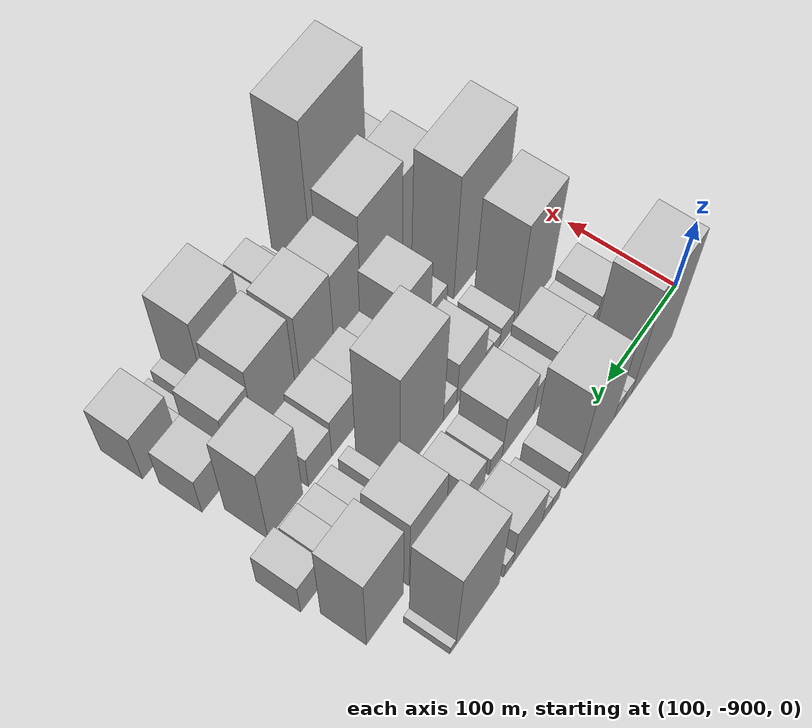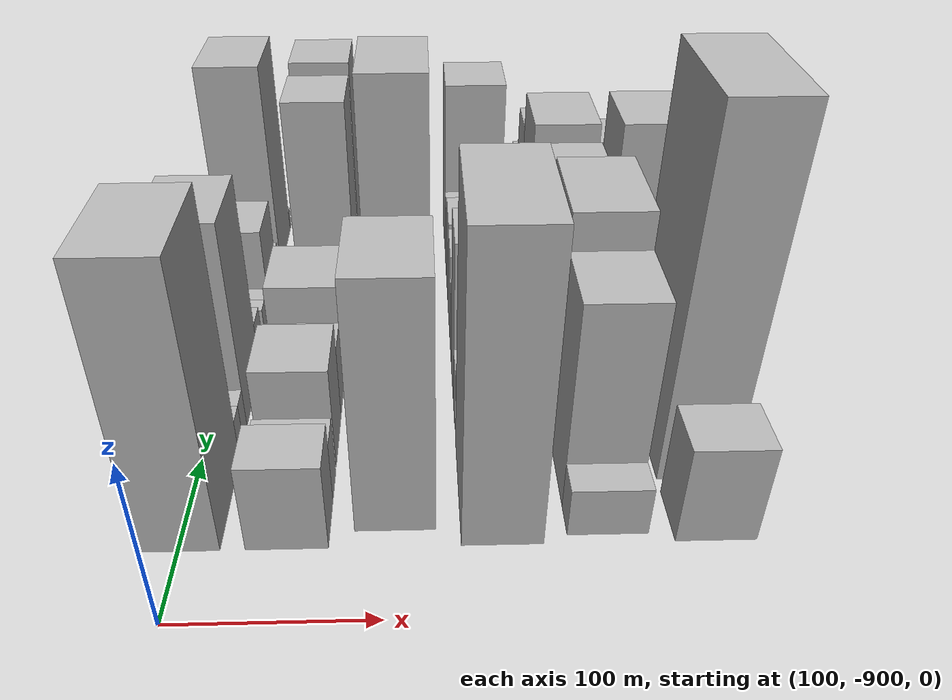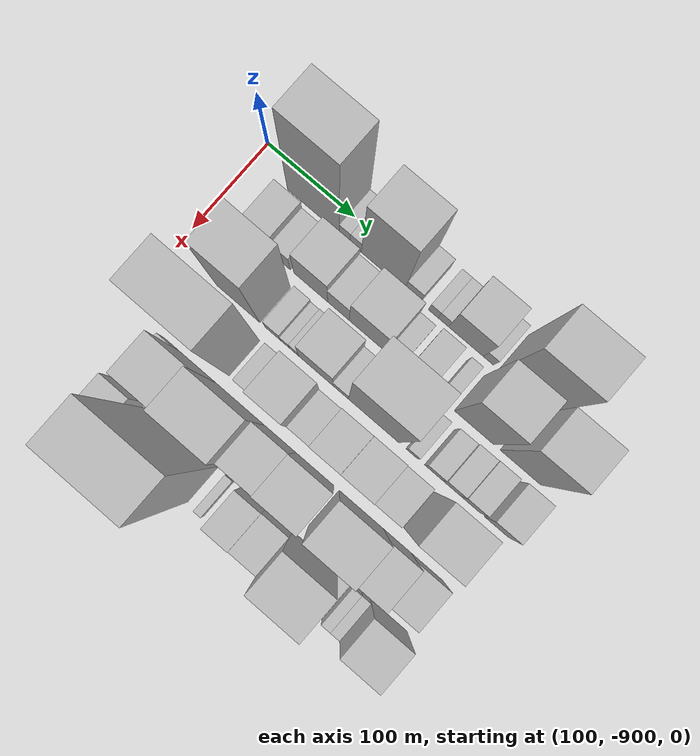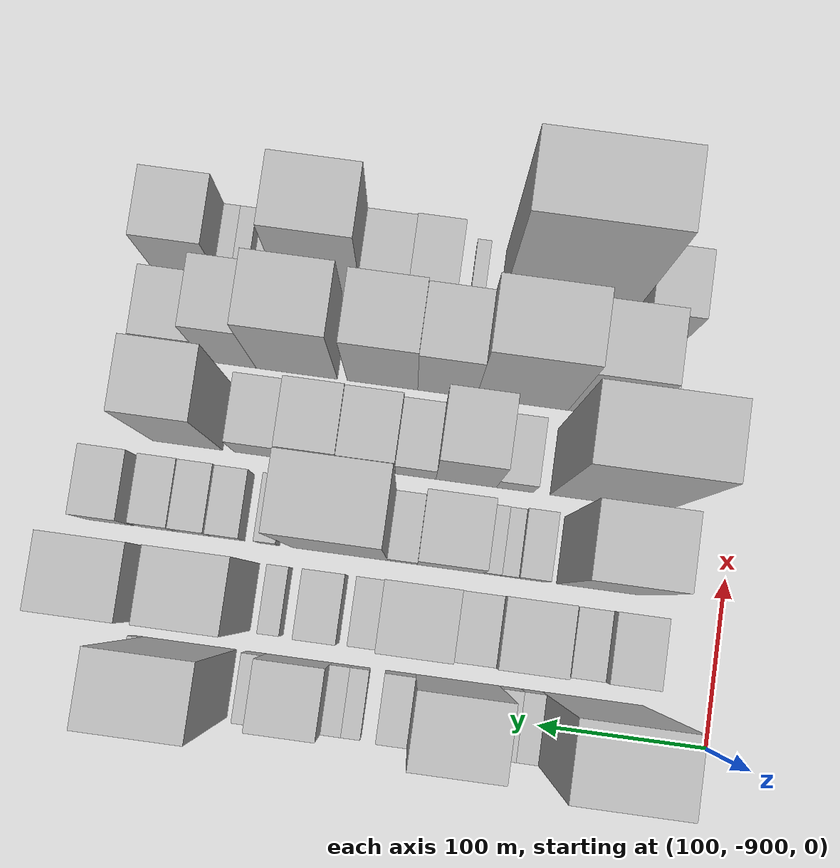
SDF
<sdf version="1.6">
 <world name="default">
  <model name="building_1">
   <static>1</static>
   <pose>100.0000 -830.2596 0 0.000000 0.000000 0.000000</pose>
   <link name="link">
    <pose>0 0 84.00 0 0 0</pose>
    <collision name="collision"><geometry><box><size>40.0000 59.4807 168.0000</size></box></geometry></collision>
    <visual name="visual">
     <cast_shadows>0</cast_shadows>
     <geometry><box><size>40.0000 59.4807 168.0000</size></box></geometry>
     <material>
      <script>
       <uri>model://HANNAS_wall/materials/scripts</uri>
       <uri>model://HANNAS_wall/materials/textures</uri>
       <name>vrc/HANNAS_wall</name>
      </script>
     </material>
    </visual>
   </link>
  </model>
  <model name="building_2">
   <static>1</static>
   <pose>100.0000 -794.2033 0 0.000000 0.000000 0.000000</pose>
   <link name="link">
    <pose>0 0 13.50 0 0 0</pose>
    <collision name="collision"><geometry><box><size>40.0000 12.6319 27.0000</size></box></geometry></collision>
    <visual name="visual">
     <cast_shadows>0</cast_shadows>
     <geometry><box><size>40.0000 12.6319 27.0000</size></box></geometry>
     <material>
      <script>
       <uri>model://HANNAS_wall/materials/scripts</uri>
       <uri>model://HANNAS_wall/materials/textures</uri>
       <name>vrc/HANNAS_wall</name>
      </script>
     </material>
    </visual>
   </link>
  </model>
  <model name="building_3">
   <static>1</static>
   <pose>100.0000 -781.5189 0 0.000000 0.000000 0.000000</pose>
   <link name="link">
    <pose>0 0 13.50 0 0 0</pose>
    <collision name="collision"><geometry><box><size>40.0000 12.7370 27.0000</size></box></geometry></collision>
    <visual name="visual">
     <cast_shadows>0</cast_shadows>
     <geometry><box><size>40.0000 12.7370 27.0000</size></box></geometry>
     <material>
      <script>
       <uri>model://HANNAS_wall/materials/scripts</uri>
       <uri>model://HANNAS_wall/materials/textures</uri>
       <name>vrc/HANNAS_wall</name>
      </script>
     </material>
    </visual>
   </link>
  </model>
  <model name="building_4">
   <static>1</static>
   <pose>100.0000 -750.2346 0 0.000000 0.000000 0.000000</pose>
   <link name="link">
    <pose>0 0 66.00 0 0 0</pose>
    <collision name="collision"><geometry><box><size>40.0000 49.8316 132.0000</size></box></geometry></collision>
    <visual name="visual">
     <cast_shadows>0</cast_shadows>
     <geometry><box><size>40.0000 49.8316 132.0000</size></box></geometry>
     <material>
      <script>
       <uri>model://HANNAS_wall/materials/scripts</uri>
       <uri>model://HANNAS_wall/materials/textures</uri>
       <name>vrc/HANNAS_wall</name>
      </script>
     </material>
    </visual>
   </link>
  </model>
  <model name="building_5">
   <static>1</static>
   <pose>100.0000 -716.4139 0 0.000000 0.000000 0.000000</pose>
   <link name="link">
    <pose>0 0 16.50 0 0 0</pose>
    <collision name="collision"><geometry><box><size>40.0000 17.8099 33.0000</size></box></geometry></collision>
    <visual name="visual">
     <cast_shadows>0</cast_shadows>
     <geometry><box><size>40.0000 17.8099 33.0000</size></box></geometry>
     <material>
      <script>
       <uri>model://HANNAS_wall/materials/scripts</uri>
       <uri>model://HANNAS_wall/materials/textures</uri>
       <name>vrc/HANNAS_wall</name>
      </script>
     </material>
    </visual>
   </link>
  </model>
  <model name="building_6">
   <static>1</static>
   <pose>100.0000 -692.8799 0 0.000000 0.000000 0.000000</pose>
   <link name="link">
    <pose>0 0 12.00 0 0 0</pose>
    <collision name="collision"><geometry><box><size>40.0000 11.2581 24.0000</size></box></geometry></collision>
    <visual name="visual">
     <cast_shadows>0</cast_shadows>
     <geometry><box><size>40.0000 11.2581 24.0000</size></box></geometry>
     <material>
      <script>
       <uri>model://HANNAS_wall/materials/scripts</uri>
       <uri>model://HANNAS_wall/materials/textures</uri>
       <name>vrc/HANNAS_wall</name>
      </script>
     </material>
    </visual>
   </link>
  </model>
  <model name="building_7">
   <static>1</static>
   <pose>100.0000 -681.3633 0 0.000000 0.000000 0.000000</pose>
   <link name="link">
    <pose>0 0 12.00 0 0 0</pose>
    <collision name="collision"><geometry><box><size>40.0000 11.7751 24.0000</size></box></geometry></collision>
    <visual name="visual">
     <cast_shadows>0</cast_shadows>
     <geometry><box><size>40.0000 11.7751 24.0000</size></box></geometry>
     <material>
      <script>
       <uri>model://HANNAS_wall/materials/scripts</uri>
       <uri>model://HANNAS_wall/materials/textures</uri>
       <name>vrc/HANNAS_wall</name>
      </script>
     </material>
    </visual>
   </link>
  </model>
  <model name="building_8">
   <static>1</static>
   <pose>100.0000 -655.8112 0 0.000000 0.000000 0.000000</pose>
   <link name="link">
    <pose>0 0 33.00 0 0 0</pose>
    <collision name="collision"><geometry><box><size>40.0000 39.3291 66.0000</size></box></geometry></collision>
    <visual name="visual">
     <cast_shadows>0</cast_shadows>
     <geometry><box><size>40.0000 39.3291 66.0000</size></box></geometry>
     <material>
      <script>
       <uri>model://HANNAS_wall/materials/scripts</uri>
       <uri>model://HANNAS_wall/materials/textures</uri>
       <name>vrc/HANNAS_wall</name>
      </script>
     </material>
    </visual>
   </link>
  </model>
  <model name="building_9">
   <static>1</static>
   <pose>100.0000 -630.3494 0 0.000000 0.000000 0.000000</pose>
   <link name="link">
    <pose>0 0 13.50 0 0 0</pose>
    <collision name="collision"><geometry><box><size>40.0000 11.5944 27.0000</size></box></geometry></collision>
    <visual name="visual">
     <cast_shadows>0</cast_shadows>
     <geometry><box><size>40.0000 11.5944 27.0000</size></box></geometry>
     <material>
      <script>
       <uri>model://HANNAS_wall/materials/scripts</uri>
       <uri>model://HANNAS_wall/materials/textures</uri>
       <name>vrc/HANNAS_wall</name>
      </script>
     </material>
    </visual>
   </link>
  </model>
  <model name="building_10">
   <static>1</static>
   <pose>100.0000 -590.8755 0 0.000000 0.000000 0.000000</pose>
   <link name="link">
    <pose>0 0 75.00 0 0 0</pose>
    <collision name="collision"><geometry><box><size>40.0000 55.3533 150.0000</size></box></geometry></collision>
    <visual name="visual">
     <cast_shadows>0</cast_shadows>
     <geometry><box><size>40.0000 55.3533 150.0000</size></box></geometry>
     <material>
      <script>
       <uri>model://HANNAS_wall/materials/scripts</uri>
       <uri>model://HANNAS_wall/materials/textures</uri>
       <name>vrc/HANNAS_wall</name>
      </script>
     </material>
    </visual>
   </link>
  </model>
  <model name="building_11">
   <static>1</static>
   <pose>100.0000 -559.6447 0 0.000000 0.000000 0.000000</pose>
   <link name="link">
    <pose>0 0 7.50 0 0 0</pose>
    <collision name="collision"><geometry><box><size>40.0000 7.1084 15.0000</size></box></geometry></collision>
    <visual name="visual">
     <cast_shadows>0</cast_shadows>
     <geometry><box><size>40.0000 7.1084 15.0000</size></box></geometry>
     <material>
      <script>
       <uri>model://HANNAS_wall/materials/scripts</uri>
       <uri>model://HANNAS_wall/materials/textures</uri>
       <name>vrc/HANNAS_wall</name>
      </script>
     </material>
    </visual>
   </link>
  </model>
  <model name="building_49">
   <static>1</static>
   <pose>152.0000 -845.4992 0 0.000000 0.000000 0.000000</pose>
   <link name="link">
    <pose>0 0 27.00 0 0 0</pose>
    <collision name="collision"><geometry><box><size>40.0000 29.0016 54.0000</size></box></geometry></collision>
    <visual name="visual">
     <cast_shadows>0</cast_shadows>
     <geometry><box><size>40.0000 29.0016 54.0000</size></box></geometry>
     <material>
      <script>
       <uri>model://HANNAS_wall/materials/scripts</uri>
       <uri>model://HANNAS_wall/materials/textures</uri>
       <name>vrc/HANNAS_wall</name>
      </script>
     </material>
    </visual>
   </link>
  </model>
  <model name="building_50">
   <static>1</static>
   <pose>152.0000 -821.1471 0 0.000000 0.000000 0.000000</pose>
   <link name="link">
    <pose>0 0 19.50 0 0 0</pose>
    <collision name="collision"><geometry><box><size>40.0000 19.7026 39.0000</size></box></geometry></collision>
    <visual name="visual">
     <cast_shadows>0</cast_shadows>
     <geometry><box><size>40.0000 19.7026 39.0000</size></box></geometry>
     <material>
      <script>
       <uri>model://HANNAS_wall/materials/scripts</uri>
       <uri>model://HANNAS_wall/materials/textures</uri>
       <name>vrc/HANNAS_wall</name>
      </script>
     </material>
    </visual>
   </link>
  </model>
  <model name="building_51">
   <static>1</static>
   <pose>152.0000 -787.8642 0 0.000000 0.000000 0.000000</pose>
   <link name="link">
    <pose>0 0 33.00 0 0 0</pose>
    <collision name="collision"><geometry><box><size>40.0000 38.8632 66.0000</size></box></geometry></collision>
    <visual name="visual">
     <cast_shadows>0</cast_shadows>
     <geometry><box><size>40.0000 38.8632 66.0000</size></box></geometry>
     <material>
      <script>
       <uri>model://HANNAS_wall/materials/scripts</uri>
       <uri>model://HANNAS_wall/materials/textures</uri>
       <name>vrc/HANNAS_wall</name>
      </script>
     </material>
    </visual>
   </link>
  </model>
  <model name="building_52">
   <static>1</static>
   <pose>152.0000 -756.1649 0 0.000000 0.000000 0.000000</pose>
   <link name="link">
    <pose>0 0 24.00 0 0 0</pose>
    <collision name="collision"><geometry><box><size>40.0000 24.5354 48.0000</size></box></geometry></collision>
    <visual name="visual">
     <cast_shadows>0</cast_shadows>
     <geometry><box><size>40.0000 24.5354 48.0000</size></box></geometry>
     <material>
      <script>
       <uri>model://HANNAS_wall/materials/scripts</uri>
       <uri>model://HANNAS_wall/materials/textures</uri>
       <name>vrc/HANNAS_wall</name>
      </script>
     </material>
    </visual>
   </link>
  </model>
  <model name="building_53">
   <static>1</static>
   <pose>152.0000 -722.4164 0 0.000000 0.000000 0.000000</pose>
   <link name="link">
    <pose>0 0 36.00 0 0 0</pose>
    <collision name="collision"><geometry><box><size>40.0000 42.9616 72.0000</size></box></geometry></collision>
    <visual name="visual">
     <cast_shadows>0</cast_shadows>
     <geometry><box><size>40.0000 42.9616 72.0000</size></box></geometry>
     <material>
      <script>
       <uri>model://HANNAS_wall/materials/scripts</uri>
       <uri>model://HANNAS_wall/materials/textures</uri>
       <name>vrc/HANNAS_wall</name>
      </script>
     </material>
    </visual>
   </link>
  </model>
  <model name="building_54">
   <static>1</static>
   <pose>152.0000 -692.4128 0 0.000000 0.000000 0.000000</pose>
   <link name="link">
    <pose>0 0 15.00 0 0 0</pose>
    <collision name="collision"><geometry><box><size>40.0000 17.0454 30.0000</size></box></geometry></collision>
    <visual name="visual">
     <cast_shadows>0</cast_shadows>
     <geometry><box><size>40.0000 17.0454 30.0000</size></box></geometry>
     <material>
      <script>
       <uri>model://HANNAS_wall/materials/scripts</uri>
       <uri>model://HANNAS_wall/materials/textures</uri>
       <name>vrc/HANNAS_wall</name>
      </script>
     </material>
    </visual>
   </link>
  </model>
  <model name="building_55">
   <static>1</static>
   <pose>152.0000 -665.6654 0 0.000000 0.000000 0.000000</pose>
   <link name="link">
    <pose>0 0 21.00 0 0 0</pose>
    <collision name="collision"><geometry><box><size>40.0000 24.4496 42.0000</size></box></geometry></collision>
    <visual name="visual">
     <cast_shadows>0</cast_shadows>
     <geometry><box><size>40.0000 24.4496 42.0000</size></box></geometry>
     <material>
      <script>
       <uri>model://HANNAS_wall/materials/scripts</uri>
       <uri>model://HANNAS_wall/materials/textures</uri>
       <name>vrc/HANNAS_wall</name>
      </script>
     </material>
    </visual>
   </link>
  </model>
  <model name="building_56">
   <static>1</static>
   <pose>152.0000 -638.0579 0 0.000000 0.000000 0.000000</pose>
   <link name="link">
    <pose>0 0 13.50 0 0 0</pose>
    <collision name="collision"><geometry><box><size>40.0000 12.7653 27.0000</size></box></geometry></collision>
    <visual name="visual">
     <cast_shadows>0</cast_shadows>
     <geometry><box><size>40.0000 12.7653 27.0000</size></box></geometry>
     <material>
      <script>
       <uri>model://HANNAS_wall/materials/scripts</uri>
       <uri>model://HANNAS_wall/materials/textures</uri>
       <name>vrc/HANNAS_wall</name>
      </script>
     </material>
    </visual>
   </link>
  </model>
  <model name="building_57">
   <static>1</static>
   <pose>152.0000 -602.4495 0 0.000000 0.000000 0.000000</pose>
   <link name="link">
    <pose>0 0 64.50 0 0 0</pose>
    <collision name="collision"><geometry><box><size>40.0000 44.4514 129.0000</size></box></geometry></collision>
    <visual name="visual">
     <cast_shadows>0</cast_shadows>
     <geometry><box><size>40.0000 44.4514 129.0000</size></box></geometry>
     <material>
      <script>
       <uri>model://HANNAS_wall/materials/scripts</uri>
       <uri>model://HANNAS_wall/materials/textures</uri>
       <name>vrc/HANNAS_wall</name>
      </script>
     </material>
    </visual>
   </link>
  </model>
  <model name="building_58">
   <static>1</static>
   <pose>152.0000 -550.4213 0 0.000000 0.000000 0.000000</pose>
   <link name="link">
    <pose>0 0 67.50 0 0 0</pose>
    <collision name="collision"><geometry><box><size>40.0000 45.6050 135.0000</size></box></geometry></collision>
    <visual name="visual">
     <cast_shadows>0</cast_shadows>
     <geometry><box><size>40.0000 45.6050 135.0000</size></box></geometry>
     <material>
      <script>
       <uri>model://HANNAS_wall/materials/scripts</uri>
       <uri>model://HANNAS_wall/materials/textures</uri>
       <name>vrc/HANNAS_wall</name>
      </script>
     </material>
    </visual>
   </link>
  </model>
  <model name="building_98">
   <static>1</static>
   <pose>204.0000 -825.3828 0 0.000000 0.000000 0.000000</pose>
   <link name="link">
    <pose>0 0 75.00 0 0 0</pose>
    <collision name="collision"><geometry><box><size>40.0000 49.2344 150.0000</size></box></geometry></collision>
    <visual name="visual">
     <cast_shadows>0</cast_shadows>
     <geometry><box><size>40.0000 49.2344 150.0000</size></box></geometry>
     <material>
      <script>
       <uri>model://HANNAS_wall/materials/scripts</uri>
       <uri>model://HANNAS_wall/materials/textures</uri>
       <name>vrc/HANNAS_wall</name>
      </script>
     </material>
    </visual>
   </link>
  </model>
  <model name="building_99">
   <static>1</static>
   <pose>204.0000 -785.7720 0 0.000000 0.000000 0.000000</pose>
   <link name="link">
    <pose>0 0 15.00 0 0 0</pose>
    <collision name="collision"><geometry><box><size>40.0000 17.9871 30.0000</size></box></geometry></collision>
    <visual name="visual">
     <cast_shadows>0</cast_shadows>
     <geometry><box><size>40.0000 17.9871 30.0000</size></box></geometry>
     <material>
      <script>
       <uri>model://HANNAS_wall/materials/scripts</uri>
       <uri>model://HANNAS_wall/materials/textures</uri>
       <name>vrc/HANNAS_wall</name>
      </script>
     </material>
    </visual>
   </link>
  </model>
  <model name="building_100">
   <static>1</static>
   <pose>204.0000 -771.7465 0 0.000000 0.000000 0.000000</pose>
   <link name="link">
    <pose>0 0 10.50 0 0 0</pose>
    <collision name="collision"><geometry><box><size>40.0000 10.0638 21.0000</size></box></geometry></collision>
    <visual name="visual">
     <cast_shadows>0</cast_shadows>
     <geometry><box><size>40.0000 10.0638 21.0000</size></box></geometry>
     <material>
      <script>
       <uri>model://HANNAS_wall/materials/scripts</uri>
       <uri>model://HANNAS_wall/materials/textures</uri>
       <name>vrc/HANNAS_wall</name>
      </script>
     </material>
    </visual>
   </link>
  </model>
  <model name="building_101">
   <static>1</static>
   <pose>204.0000 -761.3765 0 0.000000 0.000000 0.000000</pose>
   <link name="link">
    <pose>0 0 12.00 0 0 0</pose>
    <collision name="collision"><geometry><box><size>40.0000 10.6762 24.0000</size></box></geometry></collision>
    <visual name="visual">
     <cast_shadows>0</cast_shadows>
     <geometry><box><size>40.0000 10.6762 24.0000</size></box></geometry>
     <material>
      <script>
       <uri>model://HANNAS_wall/materials/scripts</uri>
       <uri>model://HANNAS_wall/materials/textures</uri>
       <name>vrc/HANNAS_wall</name>
      </script>
     </material>
    </visual>
   </link>
  </model>
  <model name="building_102">
   <static>1</static>
   <pose>204.0000 -736.7942 0 0.000000 0.000000 0.000000</pose>
   <link name="link">
    <pose>0 0 34.50 0 0 0</pose>
    <collision name="collision"><geometry><box><size>40.0000 38.4886 69.0000</size></box></geometry></collision>
    <visual name="visual">
     <cast_shadows>0</cast_shadows>
     <geometry><box><size>40.0000 38.4886 69.0000</size></box></geometry>
     <material>
      <script>
       <uri>model://HANNAS_wall/materials/scripts</uri>
       <uri>model://HANNAS_wall/materials/textures</uri>
       <name>vrc/HANNAS_wall</name>
      </script>
     </material>
    </visual>
   </link>
  </model>
  <model name="building_103">
   <static>1</static>
   <pose>204.0000 -708.7043 0 0.000000 0.000000 0.000000</pose>
   <link name="link">
    <pose>0 0 15.00 0 0 0</pose>
    <collision name="collision"><geometry><box><size>40.0000 17.6912 30.0000</size></box></geometry></collision>
    <visual name="visual">
     <cast_shadows>0</cast_shadows>
     <geometry><box><size>40.0000 17.6912 30.0000</size></box></geometry>
     <material>
      <script>
       <uri>model://HANNAS_wall/materials/scripts</uri>
       <uri>model://HANNAS_wall/materials/textures</uri>
       <name>vrc/HANNAS_wall</name>
      </script>
     </material>
    </visual>
   </link>
  </model>
  <model name="building_104">
   <static>1</static>
   <pose>204.0000 -671.3596 0 0.000000 0.000000 0.000000</pose>
   <link name="link">
    <pose>0 0 88.50 0 0 0</pose>
    <collision name="collision"><geometry><box><size>40.0000 56.9981 177.0000</size></box></geometry></collision>
    <visual name="visual">
     <cast_shadows>0</cast_shadows>
     <geometry><box><size>40.0000 56.9981 177.0000</size></box></geometry>
     <material>
      <script>
       <uri>model://HANNAS_wall/materials/scripts</uri>
       <uri>model://HANNAS_wall/materials/textures</uri>
       <name>vrc/HANNAS_wall</name>
      </script>
     </material>
    </visual>
   </link>
  </model>
  <model name="building_105">
   <static>1</static>
   <pose>204.0000 -628.3633 0 0.000000 0.000000 0.000000</pose>
   <link name="link">
    <pose>0 0 13.50 0 0 0</pose>
    <collision name="collision"><geometry><box><size>40.0000 12.9946 27.0000</size></box></geometry></collision>
    <visual name="visual">
     <cast_shadows>0</cast_shadows>
     <geometry><box><size>40.0000 12.9946 27.0000</size></box></geometry>
     <material>
      <script>
       <uri>model://HANNAS_wall/materials/scripts</uri>
       <uri>model://HANNAS_wall/materials/textures</uri>
       <name>vrc/HANNAS_wall</name>
      </script>
     </material>
    </visual>
   </link>
  </model>
  <model name="building_106">
   <static>1</static>
   <pose>204.0000 -604.0566 0 0.000000 0.000000 0.000000</pose>
   <link name="link">
    <pose>0 0 16.50 0 0 0</pose>
    <collision name="collision"><geometry><box><size>40.0000 19.6187 33.0000</size></box></geometry></collision>
    <visual name="visual">
     <cast_shadows>0</cast_shadows>
     <geometry><box><size>40.0000 19.6187 33.0000</size></box></geometry>
     <material>
      <script>
       <uri>model://HANNAS_wall/materials/scripts</uri>
       <uri>model://HANNAS_wall/materials/textures</uri>
       <name>vrc/HANNAS_wall</name>
      </script>
     </material>
    </visual>
   </link>
  </model>
  <model name="building_107">
   <static>1</static>
   <pose>204.0000 -584.0220 0 0.000000 0.000000 0.000000</pose>
   <link name="link">
    <pose>0 0 19.50 0 0 0</pose>
    <collision name="collision"><geometry><box><size>40.0000 20.4504 39.0000</size></box></geometry></collision>
    <visual name="visual">
     <cast_shadows>0</cast_shadows>
     <geometry><box><size>40.0000 20.4504 39.0000</size></box></geometry>
     <material>
      <script>
       <uri>model://HANNAS_wall/materials/scripts</uri>
       <uri>model://HANNAS_wall/materials/textures</uri>
       <name>vrc/HANNAS_wall</name>
      </script>
     </material>
    </visual>
   </link>
  </model>
  <model name="building_108">
   <static>1</static>
   <pose>204.0000 -562.5828 0 0.000000 0.000000 0.000000</pose>
   <link name="link">
    <pose>0 0 21.00 0 0 0</pose>
    <collision name="collision"><geometry><box><size>40.0000 22.4280 42.0000</size></box></geometry></collision>
    <visual name="visual">
     <cast_shadows>0</cast_shadows>
     <geometry><box><size>40.0000 22.4280 42.0000</size></box></geometry>
     <material>
      <script>
       <uri>model://HANNAS_wall/materials/scripts</uri>
       <uri>model://HANNAS_wall/materials/textures</uri>
       <name>vrc/HANNAS_wall</name>
      </script>
     </material>
    </visual>
   </link>
  </model>
  <model name="building_109">
   <static>1</static>
   <pose>204.0000 -533.7376 0 0.000000 0.000000 0.000000</pose>
   <link name="link">
    <pose>0 0 27.00 0 0 0</pose>
    <collision name="collision"><geometry><box><size>40.0000 27.2625 54.0000</size></box></geometry></collision>
    <visual name="visual">
     <cast_shadows>0</cast_shadows>
     <geometry><box><size>40.0000 27.2625 54.0000</size></box></geometry>
     <material>
      <script>
       <uri>model://HANNAS_wall/materials/scripts</uri>
       <uri>model://HANNAS_wall/materials/textures</uri>
       <name>vrc/HANNAS_wall</name>
      </script>
     </material>
    </visual>
   </link>
  </model>
  <model name="building_151">
   <static>1</static>
   <pose>256.0000 -825.1765 0 0.000000 0.000000 0.000000</pose>
   <link name="link">
    <pose>0 0 90.00 0 0 0</pose>
    <collision name="collision"><geometry><box><size>40.0000 69.6471 180.0000</size></box></geometry></collision>
    <visual name="visual">
     <cast_shadows>0</cast_shadows>
     <geometry><box><size>40.0000 69.6471 180.0000</size></box></geometry>
     <material>
      <script>
       <uri>model://HANNAS_wall/materials/scripts</uri>
       <uri>model://HANNAS_wall/materials/textures</uri>
       <name>vrc/HANNAS_wall</name>
      </script>
     </material>
    </visual>
   </link>
  </model>
  <model name="building_152">
   <static>1</static>
   <pose>256.0000 -769.2010 0 0.000000 0.000000 0.000000</pose>
   <link name="link">
    <pose>0 0 19.50 0 0 0</pose>
    <collision name="collision"><geometry><box><size>40.0000 22.3039 39.0000</size></box></geometry></collision>
    <visual name="visual">
     <cast_shadows>0</cast_shadows>
     <geometry><box><size>40.0000 22.3039 39.0000</size></box></geometry>
     <material>
      <script>
       <uri>model://HANNAS_wall/materials/scripts</uri>
       <uri>model://HANNAS_wall/materials/textures</uri>
       <name>vrc/HANNAS_wall</name>
      </script>
     </material>
    </visual>
   </link>
  </model>
  <model name="building_153">
   <static>1</static>
   <pose>256.0000 -739.8321 0 0.000000 0.000000 0.000000</pose>
   <link name="link">
    <pose>0 0 54.00 0 0 0</pose>
    <collision name="collision"><geometry><box><size>40.0000 36.4339 108.0000</size></box></geometry></collision>
    <visual name="visual">
     <cast_shadows>0</cast_shadows>
     <geometry><box><size>40.0000 36.4339 108.0000</size></box></geometry>
     <material>
      <script>
       <uri>model://HANNAS_wall/materials/scripts</uri>
       <uri>model://HANNAS_wall/materials/textures</uri>
       <name>vrc/HANNAS_wall</name>
      </script>
     </material>
    </visual>
   </link>
  </model>
  <model name="building_154">
   <static>1</static>
   <pose>256.0000 -709.5006 0 0.000000 0.000000 0.000000</pose>
   <link name="link">
    <pose>0 0 22.50 0 0 0</pose>
    <collision name="collision"><geometry><box><size>40.0000 24.2291 45.0000</size></box></geometry></collision>
    <visual name="visual">
     <cast_shadows>0</cast_shadows>
     <geometry><box><size>40.0000 24.2291 45.0000</size></box></geometry>
     <material>
      <script>
       <uri>model://HANNAS_wall/materials/scripts</uri>
       <uri>model://HANNAS_wall/materials/textures</uri>
       <name>vrc/HANNAS_wall</name>
      </script>
     </material>
    </visual>
   </link>
  </model>
  <model name="building_155">
   <static>1</static>
   <pose>256.0000 -680.6691 0 0.000000 0.000000 0.000000</pose>
   <link name="link">
    <pose>0 0 30.00 0 0 0</pose>
    <collision name="collision"><geometry><box><size>40.0000 33.4339 60.0000</size></box></geometry></collision>
    <visual name="visual">
     <cast_shadows>0</cast_shadows>
     <geometry><box><size>40.0000 33.4339 60.0000</size></box></geometry>
     <material>
      <script>
       <uri>model://HANNAS_wall/materials/scripts</uri>
       <uri>model://HANNAS_wall/materials/textures</uri>
       <name>vrc/HANNAS_wall</name>
      </script>
     </material>
    </visual>
   </link>
  </model>
  <model name="building_156">
   <static>1</static>
   <pose>256.0000 -646.5462 0 0.000000 0.000000 0.000000</pose>
   <link name="link">
    <pose>0 0 31.50 0 0 0</pose>
    <collision name="collision"><geometry><box><size>40.0000 34.8120 63.0000</size></box></geometry></collision>
    <visual name="visual">
     <cast_shadows>0</cast_shadows>
     <geometry><box><size>40.0000 34.8120 63.0000</size></box></geometry>
     <material>
      <script>
       <uri>model://HANNAS_wall/materials/scripts</uri>
       <uri>model://HANNAS_wall/materials/textures</uri>
       <name>vrc/HANNAS_wall</name>
      </script>
     </material>
    </visual>
   </link>
  </model>
  <model name="building_157">
   <static>1</static>
   <pose>256.0000 -614.4843 0 0.000000 0.000000 0.000000</pose>
   <link name="link">
    <pose>0 0 25.50 0 0 0</pose>
    <collision name="collision"><geometry><box><size>40.0000 29.3117 51.0000</size></box></geometry></collision>
    <visual name="visual">
     <cast_shadows>0</cast_shadows>
     <geometry><box><size>40.0000 29.3117 51.0000</size></box></geometry>
     <material>
      <script>
       <uri>model://HANNAS_wall/materials/scripts</uri>
       <uri>model://HANNAS_wall/materials/textures</uri>
       <name>vrc/HANNAS_wall</name>
      </script>
     </material>
    </visual>
   </link>
  </model>
  <model name="building_158">
   <static>1</static>
   <pose>256.0000 -571.6481 0 0.000000 0.000000 0.000000</pose>
   <link name="link">
    <pose>0 0 63.00 0 0 0</pose>
    <collision name="collision"><geometry><box><size>40.0000 42.3609 126.0000</size></box></geometry></collision>
    <visual name="visual">
     <cast_shadows>0</cast_shadows>
     <geometry><box><size>40.0000 42.3609 126.0000</size></box></geometry>
     <material>
      <script>
       <uri>model://HANNAS_wall/materials/scripts</uri>
       <uri>model://HANNAS_wall/materials/textures</uri>
       <name>vrc/HANNAS_wall</name>
      </script>
     </material>
    </visual>
   </link>
  </model>
  <model name="building_196">
   <static>1</static>
   <pose>308.0000 -846.0091 0 0.000000 0.000000 0.000000</pose>
   <link name="link">
    <pose>0 0 15.00 0 0 0</pose>
    <collision name="collision"><geometry><box><size>40.0000 17.9819 30.0000</size></box></geometry></collision>
    <visual name="visual">
     <cast_shadows>0</cast_shadows>
     <geometry><box><size>40.0000 17.9819 30.0000</size></box></geometry>
     <material>
      <script>
       <uri>model://HANNAS_wall/materials/scripts</uri>
       <uri>model://HANNAS_wall/materials/textures</uri>
       <name>vrc/HANNAS_wall</name>
      </script>
     </material>
    </visual>
   </link>
  </model>
  <model name="building_197">
   <static>1</static>
   <pose>308.0000 -815.9646 0 0.000000 0.000000 0.000000</pose>
   <link name="link">
    <pose>0 0 63.00 0 0 0</pose>
    <collision name="collision"><geometry><box><size>40.0000 42.1070 126.0000</size></box></geometry></collision>
    <visual name="visual">
     <cast_shadows>0</cast_shadows>
     <geometry><box><size>40.0000 42.1070 126.0000</size></box></geometry>
     <material>
      <script>
       <uri>model://HANNAS_wall/materials/scripts</uri>
       <uri>model://HANNAS_wall/materials/textures</uri>
       <name>vrc/HANNAS_wall</name>
      </script>
     </material>
    </visual>
   </link>
  </model>
  <model name="building_198">
   <static>1</static>
   <pose>308.0000 -766.9537 0 0.000000 0.000000 0.000000</pose>
   <link name="link">
    <pose>0 0 73.50 0 0 0</pose>
    <collision name="collision"><geometry><box><size>40.0000 55.9147 147.0000</size></box></geometry></collision>
    <visual name="visual">
     <cast_shadows>0</cast_shadows>
     <geometry><box><size>40.0000 55.9147 147.0000</size></box></geometry>
     <material>
      <script>
       <uri>model://HANNAS_wall/materials/scripts</uri>
       <uri>model://HANNAS_wall/materials/textures</uri>
       <name>vrc/HANNAS_wall</name>
      </script>
     </material>
    </visual>
   </link>
  </model>
  <model name="building_199">
   <static>1</static>
   <pose>308.0000 -721.2895 0 0.000000 0.000000 0.000000</pose>
   <link name="link">
    <pose>0 0 55.50 0 0 0</pose>
    <collision name="collision"><geometry><box><size>40.0000 35.4137 111.0000</size></box></geometry></collision>
    <visual name="visual">
     <cast_shadows>0</cast_shadows>
     <geometry><box><size>40.0000 35.4137 111.0000</size></box></geometry>
     <material>
      <script>
       <uri>model://HANNAS_wall/materials/scripts</uri>
       <uri>model://HANNAS_wall/materials/textures</uri>
       <name>vrc/HANNAS_wall</name>
      </script>
     </material>
    </visual>
   </link>
  </model>
  <model name="building_200">
   <static>1</static>
   <pose>308.0000 -682.1967 0 0.000000 0.000000 0.000000</pose>
   <link name="link">
    <pose>0 0 58.50 0 0 0</pose>
    <collision name="collision"><geometry><box><size>40.0000 42.7721 117.0000</size></box></geometry></collision>
    <visual name="visual">
     <cast_shadows>0</cast_shadows>
     <geometry><box><size>40.0000 42.7721 117.0000</size></box></geometry>
     <material>
      <script>
       <uri>model://HANNAS_wall/materials/scripts</uri>
       <uri>model://HANNAS_wall/materials/textures</uri>
       <name>vrc/HANNAS_wall</name>
      </script>
     </material>
    </visual>
   </link>
  </model>
  <model name="building_201">
   <static>1</static>
   <pose>308.0000 -630.1445 0 0.000000 0.000000 0.000000</pose>
   <link name="link">
    <pose>0 0 63.00 0 0 0</pose>
    <collision name="collision"><geometry><box><size>40.0000 49.3323 126.0000</size></box></geometry></collision>
    <visual name="visual">
     <cast_shadows>0</cast_shadows>
     <geometry><box><size>40.0000 49.3323 126.0000</size></box></geometry>
     <material>
      <script>
       <uri>model://HANNAS_wall/materials/scripts</uri>
       <uri>model://HANNAS_wall/materials/textures</uri>
       <name>vrc/HANNAS_wall</name>
      </script>
     </material>
    </visual>
   </link>
  </model>
  <model name="building_202">
   <static>1</static>
   <pose>308.0000 -589.9436 0 0.000000 0.000000 0.000000</pose>
   <link name="link">
    <pose>0 0 51.00 0 0 0</pose>
    <collision name="collision"><geometry><box><size>40.0000 31.0694 102.0000</size></box></geometry></collision>
    <visual name="visual">
     <cast_shadows>0</cast_shadows>
     <geometry><box><size>40.0000 31.0694 102.0000</size></box></geometry>
     <material>
      <script>
       <uri>model://HANNAS_wall/materials/scripts</uri>
       <uri>model://HANNAS_wall/materials/textures</uri>
       <name>vrc/HANNAS_wall</name>
      </script>
     </material>
    </visual>
   </link>
  </model>
  <model name="building_203">
   <static>1</static>
   <pose>308.0000 -556.6757 0 0.000000 0.000000 0.000000</pose>
   <link name="link">
    <pose>0 0 30.00 0 0 0</pose>
    <collision name="collision"><geometry><box><size>40.0000 35.4664 60.0000</size></box></geometry></collision>
    <visual name="visual">
     <cast_shadows>0</cast_shadows>
     <geometry><box><size>40.0000 35.4664 60.0000</size></box></geometry>
     <material>
      <script>
       <uri>model://HANNAS_wall/materials/scripts</uri>
       <uri>model://HANNAS_wall/materials/textures</uri>
       <name>vrc/HANNAS_wall</name>
      </script>
     </material>
    </visual>
   </link>
  </model>
  <model name="building_246">
   <static>1</static>
   <pose>360.0000 -844.3983 0 0.000000 0.000000 0.000000</pose>
   <link name="link">
    <pose>0 0 30.00 0 0 0</pose>
    <collision name="collision"><geometry><box><size>40.0000 31.2035 60.0000</size></box></geometry></collision>
    <visual name="visual">
     <cast_shadows>0</cast_shadows>
     <geometry><box><size>40.0000 31.2035 60.0000</size></box></geometry>
     <material>
      <script>
       <uri>model://HANNAS_wall/materials/scripts</uri>
       <uri>model://HANNAS_wall/materials/textures</uri>
       <name>vrc/HANNAS_wall</name>
      </script>
     </material>
    </visual>
   </link>
  </model>
  <model name="building_247">
   <static>1</static>
   <pose>360.0000 -782.7310 0 0.000000 0.000000 0.000000</pose>
   <link name="link">
    <pose>0 0 106.50 0 0 0</pose>
    <collision name="collision"><geometry><box><size>40.0000 74.1311 213.0000</size></box></geometry></collision>
    <visual name="visual">
     <cast_shadows>0</cast_shadows>
     <geometry><box><size>40.0000 74.1311 213.0000</size></box></geometry>
     <material>
      <script>
       <uri>model://HANNAS_wall/materials/scripts</uri>
       <uri>model://HANNAS_wall/materials/textures</uri>
       <name>vrc/HANNAS_wall</name>
      </script>
     </material>
    </visual>
   </link>
  </model>
  <model name="building_248">
   <static>1</static>
   <pose>360.0000 -731.4783 0 0.000000 0.000000 0.000000</pose>
   <link name="link">
    <pose>0 0 9.00 0 0 0</pose>
    <collision name="collision"><geometry><box><size>40.0000 8.3742 18.0000</size></box></geometry></collision>
    <visual name="visual">
     <cast_shadows>0</cast_shadows>
     <geometry><box><size>40.0000 8.3742 18.0000</size></box></geometry>
     <material>
      <script>
       <uri>model://HANNAS_wall/materials/scripts</uri>
       <uri>model://HANNAS_wall/materials/textures</uri>
       <name>vrc/HANNAS_wall</name>
      </script>
     </material>
    </visual>
   </link>
  </model>
  <model name="building_249">
   <static>1</static>
   <pose>360.0000 -705.2273 0 0.000000 0.000000 0.000000</pose>
   <link name="link">
    <pose>0 0 27.00 0 0 0</pose>
    <collision name="collision"><geometry><box><size>40.0000 28.1277 54.0000</size></box></geometry></collision>
    <visual name="visual">
     <cast_shadows>0</cast_shadows>
     <geometry><box><size>40.0000 28.1277 54.0000</size></box></geometry>
     <material>
      <script>
       <uri>model://HANNAS_wall/materials/scripts</uri>
       <uri>model://HANNAS_wall/materials/textures</uri>
       <name>vrc/HANNAS_wall</name>
      </script>
     </material>
    </visual>
   </link>
  </model>
  <model name="building_250">
   <static>1</static>
   <pose>360.0000 -676.6141 0 0.000000 0.000000 0.000000</pose>
   <link name="link">
    <pose>0 0 25.50 0 0 0</pose>
    <collision name="collision"><geometry><box><size>40.0000 29.0988 51.0000</size></box></geometry></collision>
    <visual name="visual">
     <cast_shadows>0</cast_shadows>
     <geometry><box><size>40.0000 29.0988 51.0000</size></box></geometry>
     <material>
      <script>
       <uri>model://HANNAS_wall/materials/scripts</uri>
       <uri>model://HANNAS_wall/materials/textures</uri>
       <name>vrc/HANNAS_wall</name>
      </script>
     </material>
    </visual>
   </link>
  </model>
  <model name="building_251">
   <static>1</static>
   <pose>360.0000 -636.8591 0 0.000000 0.000000 0.000000</pose>
   <link name="link">
    <pose>0 0 64.50 0 0 0</pose>
    <collision name="collision"><geometry><box><size>40.0000 50.4111 129.0000</size></box></geometry></collision>
    <visual name="visual">
     <cast_shadows>0</cast_shadows>
     <geometry><box><size>40.0000 50.4111 129.0000</size></box></geometry>
     <material>
      <script>
       <uri>model://HANNAS_wall/materials/scripts</uri>
       <uri>model://HANNAS_wall/materials/textures</uri>
       <name>vrc/HANNAS_wall</name>
      </script>
     </material>
    </visual>
   </link>
  </model>
  <model name="building_252">
   <static>1</static>
   <pose>360.0000 -605.1705 0 0.000000 0.000000 0.000000</pose>
   <link name="link">
    <pose>0 0 13.50 0 0 0</pose>
    <collision name="collision"><geometry><box><size>40.0000 12.9660 27.0000</size></box></geometry></collision>
    <visual name="visual">
     <cast_shadows>0</cast_shadows>
     <geometry><box><size>40.0000 12.9660 27.0000</size></box></geometry>
     <material>
      <script>
       <uri>model://HANNAS_wall/materials/scripts</uri>
       <uri>model://HANNAS_wall/materials/textures</uri>
       <name>vrc/HANNAS_wall</name>
      </script>
     </material>
    </visual>
   </link>
  </model>
  <model name="building_253">
   <static>1</static>
   <pose>360.0000 -589.7339 0 0.000000 0.000000 0.000000</pose>
   <link name="link">
    <pose>0 0 10.50 0 0 0</pose>
    <collision name="collision"><geometry><box><size>40.0000 9.9072 21.0000</size></box></geometry></collision>
    <visual name="visual">
     <cast_shadows>0</cast_shadows>
     <geometry><box><size>40.0000 9.9072 21.0000</size></box></geometry>
     <material>
      <script>
       <uri>model://HANNAS_wall/materials/scripts</uri>
       <uri>model://HANNAS_wall/materials/textures</uri>
       <name>vrc/HANNAS_wall</name>
      </script>
     </material>
    </visual>
   </link>
  </model>
  <model name="building_254">
   <static>1</static>
   <pose>360.0000 -579.7807 0 0.000000 0.000000 0.000000</pose>
   <link name="link">
    <pose>0 0 10.50 0 0 0</pose>
    <collision name="collision"><geometry><box><size>40.0000 9.9992 21.0000</size></box></geometry></collision>
    <visual name="visual">
     <cast_shadows>0</cast_shadows>
     <geometry><box><size>40.0000 9.9992 21.0000</size></box></geometry>
     <material>
      <script>
       <uri>model://HANNAS_wall/materials/scripts</uri>
       <uri>model://HANNAS_wall/materials/textures</uri>
       <name>vrc/HANNAS_wall</name>
      </script>
     </material>
    </visual>
   </link>
  </model>
  <model name="building_255">
   <static>1</static>
   <pose>360.0000 -554.4773 0 0.000000 0.000000 0.000000</pose>
   <link name="link">
    <pose>0 0 37.50 0 0 0</pose>
    <collision name="collision"><geometry><box><size>40.0000 40.6076 75.0000</size></box></geometry></collision>
    <visual name="visual">
     <cast_shadows>0</cast_shadows>
     <geometry><box><size>40.0000 40.6076 75.0000</size></box></geometry>
     <material>
      <script>
       <uri>model://HANNAS_wall/materials/scripts</uri>
       <uri>model://HANNAS_wall/materials/textures</uri>
       <name>vrc/HANNAS_wall</name>
      </script>
     </material>
    </visual>
   </link>
  </model>
 </world>
</sdf>
